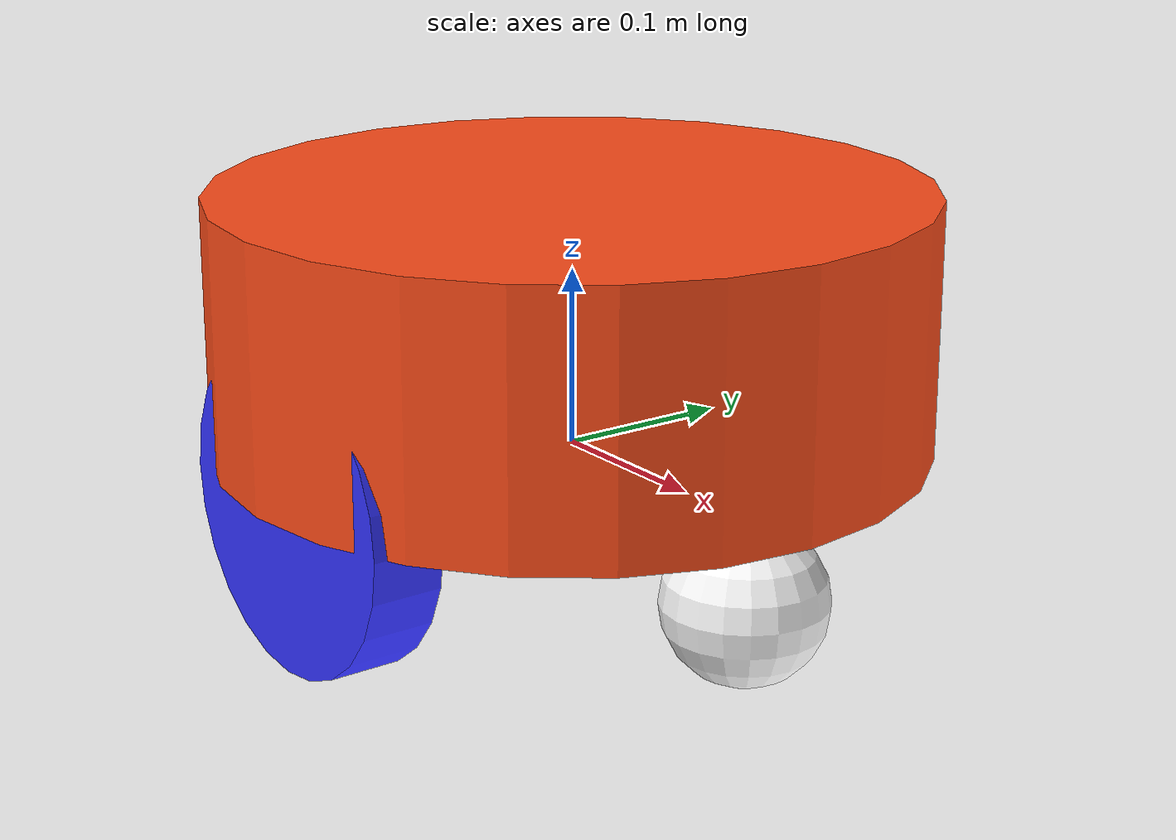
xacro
<?xml version="1.0"?>
<robot xmlns:xacro="http://www.ros.org/wiki/xacro" >

    <xacro:include filename="inertial_macros.xacro"/>

    <xacro:property name="chassis_height" value="0.145"/>
    <xacro:property name="wheel_offset_y" value="0.165"/>

    <xacro:property name="wheel_radius" value="0.09"/>
    <xacro:property name="wheel_thickness" value="0.04"/>
    <xacro:property name="wheel_mass" value="0.8"/>

    <xacro:property name="caster_wheel_offset_x" value="0.15"/>
    <xacro:property name="caster_wheel_radius" value="0.045"/>
    <xacro:property name="caster_wheel_mass" value="0.2"/>
    <xacro:property name="caster_wheel_offset_z" value="-${caster_wheel_radius}"/>

    <material name="white">
        <color rgba="1 1 1 1" />
    </material>

    <material name="orange">
        <color rgba="1 0.3 0.1 1"/>
    </material>

    <material name="blue">
        <color rgba="0.2 0.2 1 1"/>
    </material>

    <material name="black">
        <color rgba="0 0 0 1"/>
    </material>

    <material name="red">
        <color rgba="1 0 0 1"/>
    </material>

    <!-- BASE LINK -->

    <link name="base_link">

    </link>

    <!-- BASE_FOOTPRINT LINK -->

    <joint name="base_footprint_joint" type="fixed">
        <parent link="base_link"/>
        <child link="base_footprint"/>
        <origin xyz="0 0 0" rpy="0 0 0"/>
    </joint>

    <link name="base_footprint">
    </link>

    <!-- CHASSIS LINK -->

    <joint name="chassis_joint" type="fixed">
        <parent link="base_link"/>
        <child link="chassis"/>
        <origin xyz="0 0 0"/>
    </joint>

    <link name="chassis">
        <visual>
            <origin xyz="0 0 ${chassis_height/2}"/>
            <geometry>
                <cylinder radius="0.2" length="0.145"/>
            </geometry>
            <material name="orange"/>
        </visual>
        <collision>
            <origin xyz="0 0 ${chassis_height/2}"/>
            <geometry>
                <cylinder radius="0.1" length="0.145"/>
            </geometry>
        </collision>
        <xacro:inertial_cylinder mass="3" length="${chassis_height}" radius="0.2">
            <origin xyz="0 0 0" rpy="0 0 0"/>
        </xacro:inertial_cylinder>
    </link>

    <gazebo reference="chassis">
        <material>Gazebo/Orange</material>
    </gazebo>

    <!-- LEFT WHEEL LINK -->

    <joint name="left_wheel_joint" type="continuous">
        <parent link="base_link"/>
        <child link="left_wheel"/>
        <origin xyz="0 ${wheel_offset_y} 0" rpy="-${pi/2} 0 0" />
        <axis xyz="0 0 1"/>
    </joint>

    <link name="left_wheel">
        <visual>
            <geometry>
                <cylinder radius="${wheel_radius}" length="${wheel_thickness}"/>
            </geometry>
            <material name="blue"/>
        </visual>
        <collision>
            <geometry>
                <sphere radius="${wheel_radius}"/>
            </geometry>
        </collision>
        <xacro:inertial_cylinder mass="${wheel_mass}" length="${wheel_thickness}" radius="${wheel_radius}">
            <origin xyz="0 0 0" rpy="0 0 0"/>
        </xacro:inertial_cylinder>
    </link>

    <gazebo reference="left_wheel">
        <material>Gazebo/Blue</material>
    </gazebo>

    <!-- RIGHT WHEEL LINK -->

    <joint name="right_wheel_joint" type="continuous">
        <parent link="base_link"/>
        <child link="right_wheel"/>
        <origin xyz="0 ${-wheel_offset_y} 0" rpy="${pi/2} 0 0" />
        <axis xyz="0 0 -1"/>
    </joint>

    <link name="right_wheel">
        <visual>
            <geometry>
                <cylinder radius="${wheel_radius}" length="${wheel_thickness}"/>
            </geometry>
            <material name="blue"/>
        </visual>
        <collision>
            <geometry>
                <sphere radius="${wheel_radius}"/>
            </geometry>
        </collision>
        <xacro:inertial_cylinder mass="${wheel_mass}" length="${wheel_thickness}" radius="${wheel_radius}">
            <origin xyz="0 0 0" rpy="0 0 0"/>
        </xacro:inertial_cylinder>
    </link>

    <gazebo reference="right_wheel">
        <material>Gazebo/Blue</material>
    </gazebo>

    <!-- FRont CASTER WHEEL LINK -->

    <joint name="front_caster_wheel_joint" type="fixed">
        <parent link="chassis"/>
        <child link="front_caster_wheel"/>
        <origin xyz="${caster_wheel_offset_x} 0 ${caster_wheel_offset_z}"/>
    </joint>

    <link name="front_caster_wheel">
        <visual>
            <geometry>
                <sphere radius="${caster_wheel_radius}"/>
            </geometry>
            <material name="white"/>
        </visual>
        <collision>
            <geometry>
                <sphere radius="${caster_wheel_radius}"/>
            </geometry>
        </collision>
        <xacro:inertial_sphere mass="${caster_wheel_mass}" radius="${caster_wheel_radius}">
            <origin xyz="0 0 0" rpy="0 0 0"/>
        </xacro:inertial_sphere>
    </link>

    <gazebo reference="front_caster_wheel">
        <material>Gazebo/White</material>
        <mu1 value="0.001"/>
        <mu2 value="0.001"/>
    </gazebo>

    <!-- back CASTER WHEEL LINK -->

    <joint name="back_caster_wheel_joint" type="fixed">
        <parent link="chassis"/>
        <child link="back_caster_wheel"/>
        <origin xyz="-${caster_wheel_offset_x} 0 ${caster_wheel_offset_z}"/>
    </joint>

    <link name="back_caster_wheel">
        <visual>
            <geometry>
                <sphere radius="${caster_wheel_radius}"/>
            </geometry>
            <material name="white"/>
        </visual>
        <collision>
            <geometry>
                <sphere radius="${caster_wheel_radius}"/>
            </geometry>
        </collision>
        <xacro:inertial_sphere mass="${caster_wheel_mass}" radius="${caster_wheel_radius}">
            <origin xyz="0 0 0" rpy="0 0 0"/>
        </xacro:inertial_sphere>
    </link>

    <gazebo reference="back_caster_wheel">
        <material>Gazebo/White</material>
        <mu1 value="0.001"/>
        <mu2 value="0.001"/>
    </gazebo>

</robot>
